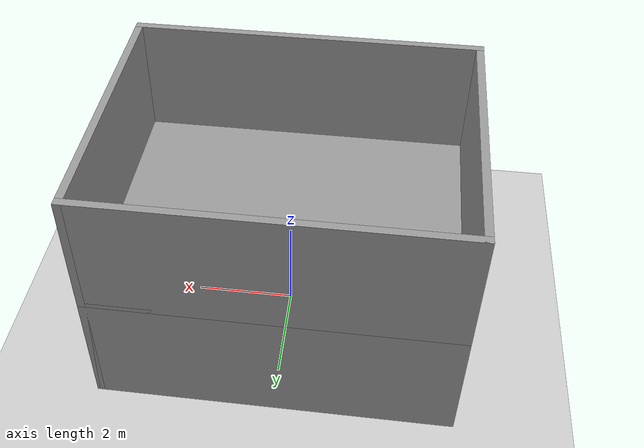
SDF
<sdf version="1.7">
 <world name="default">
  <light name="sun" type="directional">
   <pose>0 0 10 0 -0 0</pose>
   <diffuse>0.8 0.8 0.8 1</diffuse>
   <specular>0.2 0.2 0.2 1</specular>
   <attenuation>
    <range>1000</range>
    <constant>0.9</constant>
    <linear>0.01</linear>
    <quadratic>0.001</quadratic>
   </attenuation>
   <direction>-0.5 0.1 -0.9</direction>
   <spot><inner_angle>0</inner_angle><outer_angle>0</outer_angle><falloff>0</falloff></spot>
  </light>
  <model name="ground_plane">
   <static>1</static>
   <link name="link">
    <collision name="collision">
     <geometry><plane><normal>0 0 1</normal><size>100 100</size></plane></geometry>
     <surface>
      <contact><collide_bitmask>65535</collide_bitmask></contact>
      <friction><ode><mu>100</mu><mu2>50</mu2></ode></friction>
     </surface>
    </collision>
    <visual name="visual">
     <cast_shadows>0</cast_shadows>
     <geometry><plane><normal>0 0 1</normal><size>100 100</size></plane></geometry>
     <material>
      <script><uri>file://media/materials/scripts/gazebo.material</uri><name>Gazebo/Grey</name></script>
     </material>
    </visual>
   </link>
  </model>
  <gravity>0 0 -9.8</gravity>
  <magnetic_field>6e-06 2.3e-05 -4.2e-05</magnetic_field>
  <atmosphere type="adiabatic"/>
  <physics type="ode">
   <max_step_size>0.001</max_step_size>
   <real_time_factor>1</real_time_factor>
   <real_time_update_rate>1000</real_time_update_rate>
  </physics>
  <scene><ambient>0.4 0.4 0.4 1</ambient><background>0.7 0.7 0.7 1</background><shadows>1</shadows></scene>
  <audio><device>default</device></audio>
  <spherical_coordinates>
   <surface_model>EARTH_WGS84</surface_model>
   <latitude_deg>0</latitude_deg>
   <longitude_deg>0</longitude_deg>
   <elevation>0</elevation>
   <heading_deg>0</heading_deg>
  </spherical_coordinates>
  <model name="Entrance">
   <link name="Floor_7">
    <collision name="Floor_7_Collision">
     <geometry><box><size>7 5.5 0.1</size></box></geometry>
     <pose>0 0 0.05 0 -0 0</pose>
    </collision>
    <visual name="Floor_7_Visual">
     <pose>0 0 0.05 0 -0 0</pose>
     <geometry><box><size>7 5.5 0.1</size></box></geometry>
     <material>
      <script><uri>file://media/materials/scripts/gazebo.material</uri><name>Gazebo/Grey</name></script>
      <ambient>1 1 1 1</ambient>
     </material>
     <meta><layer>1</layer></meta>
    </visual>
    <pose>0 0.151365 2.5 0 -0 0</pose>
   </link>
   <link name="Wall_18">
    <collision name="Wall_18_Collision">
     <geometry><box><size>7 0.15 2.5</size></box></geometry>
     <pose>0 0 1.25 0 -0 0</pose>
    </collision>
    <visual name="Wall_18_Visual">
     <pose>0 0 1.25 0 -0 0</pose>
     <geometry><box><size>7 0.15 2.5</size></box></geometry>
     <material>
      <script><uri>file://media/materials/scripts/gazebo.material</uri><name>Gazebo/Grey</name></script>
      <ambient>1 1 1 1</ambient>
     </material>
     <meta><layer>0</layer></meta>
    </visual>
    <pose>0 -2.52364 0 0 -0 3.14159</pose>
   </link>
   <link name="Wall_20">
    <collision name="Wall_20_Collision">
     <geometry><box><size>1 0.15 2.5</size></box></geometry>
     <pose>0 0 1.25 0 -0 0</pose>
    </collision>
    <visual name="Wall_20_Visual">
     <pose>0 0 1.25 0 -0 0</pose>
     <geometry><box><size>1 0.15 2.5</size></box></geometry>
     <material>
      <script><uri>file://media/materials/scripts/gazebo.material</uri><name>Gazebo/Grey</name></script>
      <ambient>1 1 1 1</ambient>
     </material>
     <meta><layer>0</layer></meta>
    </visual>
    <pose>3.425 2.40137 0 0 -0 -1.5708</pose>
   </link>
   <link name="Wall_22">
    <collision name="Wall_22_Collision">
     <geometry><box><size>1 0.15 2.5</size></box></geometry>
     <pose>0 0 1.25 0 -0 0</pose>
    </collision>
    <visual name="Wall_22_Visual">
     <pose>0 0 1.25 0 -0 0</pose>
     <geometry><box><size>1 0.15 2.5</size></box></geometry>
     <material>
      <script><uri>file://media/materials/scripts/gazebo.material</uri><name>Gazebo/Grey</name></script>
      <ambient>1 1 1 1</ambient>
     </material>
     <meta><layer>0</layer></meta>
    </visual>
    <pose>3.425 -2.09863 0 0 -0 1.5708</pose>
   </link>
   <link name="Wall_49">
    <collision name="Wall_49_Collision">
     <geometry><box><size>7 0.15 2.5</size></box></geometry>
     <pose>0 0 1.25 0 -0 0</pose>
    </collision>
    <visual name="Wall_49_Visual">
     <pose>0 0 1.25 0 -0 0</pose>
     <geometry><box><size>7 0.15 2.5</size></box></geometry>
     <material>
      <script><uri>file://media/materials/scripts/gazebo.material</uri><name>Gazebo/Grey</name></script>
      <ambient>1 1 1 1</ambient>
     </material>
     <meta><layer>1</layer></meta>
    </visual>
    <pose>0 2.82637 2.5 0 -0 3.14159</pose>
   </link>
   <link name="Wall_50">
    <collision name="Wall_50_Collision">
     <geometry><box><size>5.5 0.15 2.5</size></box></geometry>
     <pose>0 0 1.25 0 -0 0</pose>
    </collision>
    <visual name="Wall_50_Visual">
     <pose>0 0 1.25 0 -0 0</pose>
     <geometry><box><size>5.5 0.15 2.5</size></box></geometry>
     <material>
      <script><uri>file://media/materials/scripts/gazebo.material</uri><name>Gazebo/Grey</name></script>
      <ambient>1 1 1 1</ambient>
     </material>
     <meta><layer>1</layer></meta>
    </visual>
    <pose>-3.425 0.151365 2.5 0 -0 -1.5708</pose>
   </link>
   <link name="Wall_51">
    <collision name="Wall_51_Collision">
     <geometry><box><size>7 0.15 2.5</size></box></geometry>
     <pose>0 0 1.25 0 -0 0</pose>
    </collision>
    <visual name="Wall_51_Visual">
     <pose>0 0 1.25 0 -0 0</pose>
     <geometry><box><size>7 0.15 2.5</size></box></geometry>
     <material>
      <script><uri>file://media/materials/scripts/gazebo.material</uri><name>Gazebo/Grey</name></script>
      <ambient>1 1 1 1</ambient>
     </material>
     <meta><layer>1</layer></meta>
    </visual>
    <pose>0 -2.52364 2.5 0 -0 0</pose>
   </link>
   <link name="Wall_53">
    <collision name="Wall_53_Collision">
     <geometry><box><size>5.5 0.15 2.5</size></box></geometry>
     <pose>0 0 1.25 0 -0 0</pose>
    </collision>
    <visual name="Wall_53_Visual">
     <pose>0 0 1.25 0 -0 0</pose>
     <geometry><box><size>5.5 0.15 2.5</size></box></geometry>
     <material>
      <script><uri>file://media/materials/scripts/gazebo.material</uri><name>Gazebo/Grey</name></script>
      <ambient>1 1 1 1</ambient>
     </material>
     <meta><layer>1</layer></meta>
    </visual>
    <pose>3.425 0.151365 2.5 0 -0 -1.5708</pose>
   </link>
   <link name="Wall_8">
    <collision name="Wall_8_Collision">
     <geometry><box><size>7 0.15 2.5</size></box></geometry>
     <pose>0 0 1.25 0 -0 0</pose>
    </collision>
    <visual name="Wall_8_Visual">
     <pose>0 0 1.25 0 -0 0</pose>
     <geometry><box><size>7 0.15 2.5</size></box></geometry>
     <material>
      <script><uri>file://media/materials/scripts/gazebo.material</uri><name>Gazebo/Grey</name></script>
      <ambient>1 1 1 1</ambient>
     </material>
     <meta><layer>0</layer></meta>
    </visual>
    <pose>0 2.82637 0 0 -0 0</pose>
   </link>
   <static>1</static>
  </model>
 </world>
</sdf>
